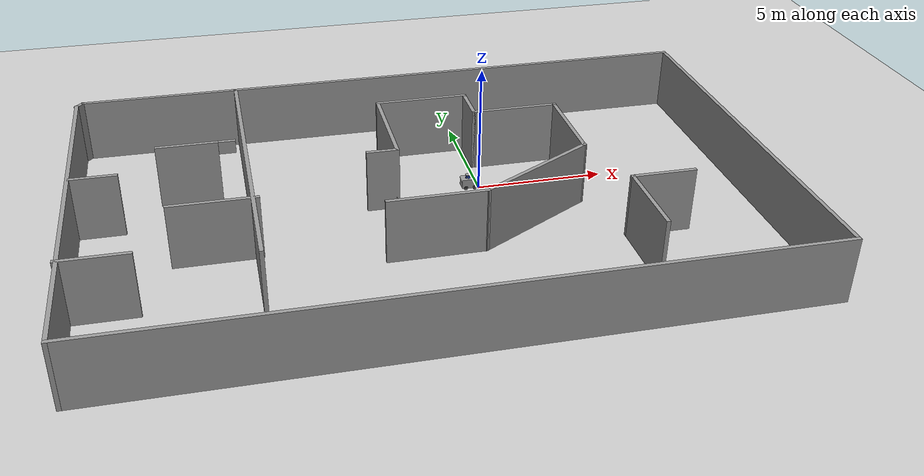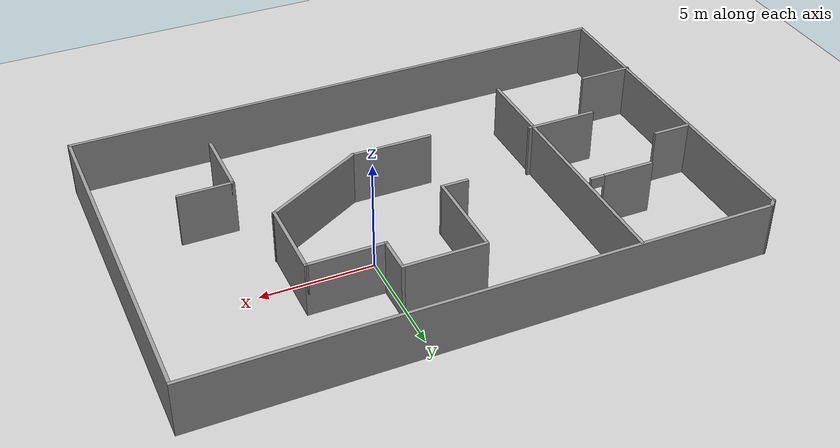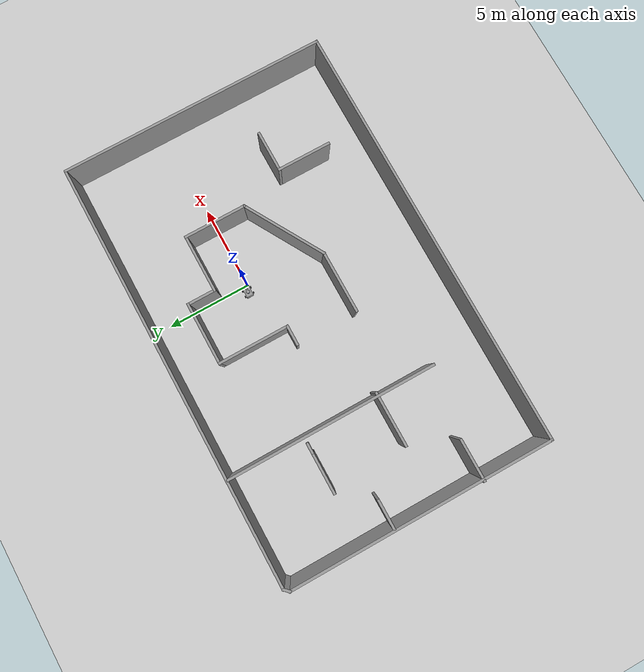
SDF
<sdf version="1.6">
 <world name="default">
  <light name="sun" type="directional">
   <pose>0 0 10 0 -0 0</pose>
   <diffuse>0.8 0.8 0.8 1</diffuse>
   <specular>0.2 0.2 0.2 1</specular>
   <attenuation>
    <range>1000</range>
    <constant>0.9</constant>
    <linear>0.01</linear>
    <quadratic>0.001</quadratic>
   </attenuation>
   <direction>-0.5 0.1 -0.9</direction>
  </light>
  <model name="ground_plane">
   <static>1</static>
   <link name="link">
    <collision name="collision">
     <geometry><plane><normal>0 0 1</normal><size>100 100</size></plane></geometry>
     <surface>
      <contact><collide_bitmask>65535</collide_bitmask></contact>
      <friction><ode><mu>100</mu><mu2>50</mu2></ode></friction>
     </surface>
    </collision>
    <visual name="visual">
     <cast_shadows>0</cast_shadows>
     <geometry><plane><normal>0 0 1</normal><size>100 100</size></plane></geometry>
     <material>
      <script><uri>file://media/materials/scripts/gazebo.material</uri><name>Gazebo/Grey</name></script>
     </material>
    </visual>
   </link>
  </model>
  <gravity>0 0 -9.8</gravity>
  <magnetic_field>6e-06 2.3e-05 -4.2e-05</magnetic_field>
  <atmosphere type="adiabatic"/>
  <physics name="default_physics" default="0" type="ode">
   <max_step_size>0.001</max_step_size>
   <real_time_factor>1</real_time_factor>
   <real_time_update_rate>1000</real_time_update_rate>
  </physics>
  <scene><ambient>0.4 0.4 0.4 1</ambient><background>0.7 0.7 0.7 1</background><shadows>1</shadows></scene>
  <audio><device>default</device></audio>
  <spherical_coordinates>
   <surface_model>EARTH_WGS84</surface_model>
   <latitude_deg>0</latitude_deg>
   <longitude_deg>0</longitude_deg>
   <elevation>0</elevation>
   <heading_deg>0</heading_deg>
  </spherical_coordinates>
  <model name="chetak_wc">
   <link name="base_link">
    <inertial>
     <pose>-0.36131 0.199977 0.277186 0 -0 0</pose>
     <mass>42.0188</mass>
     <inertia>
      <ixx>17.1146</ixx>
      <ixy>0.000253251</ixy>
      <ixz>0.679878</ixz>
      <iyy>28.5189</iyy>
      <iyz>2.14807e-05</iyz>
      <izz>29.9949</izz>
     </inertia>
    </inertial>
    <collision name="base_link_collision">
     <geometry>
      <mesh>
       <scale>0.001 0.001 0.001</scale>
       <uri>/home/sagar/catkin_ws/src/chetak_wc_description/meshes/base_link.stl</uri>
      </mesh>
     </geometry>
     <surface><friction><ode><mu>0.2</mu><mu2>0.2</mu2></ode></friction></surface>
    </collision>
    <collision name="base_link_fixed_joint_lump__uvc_rod__1_collision_1">
     <geometry>
      <mesh>
       <scale>0.001 0.001 0.001</scale>
       <uri>/home/sagar/catkin_ws/src/chetak_wc_description/meshes/uvc_rod__1.stl</uri>
      </mesh>
     </geometry>
     <surface><friction><ode><mu>0.2</mu><mu2>0.2</mu2></ode></friction></surface>
    </collision>
    <collision name="base_link_fixed_joint_lump__uvc_plate_1_collision_2">
     <geometry>
      <mesh>
       <scale>0.001 0.001 0.001</scale>
       <uri>/home/sagar/catkin_ws/src/chetak_wc_description/meshes/uvc_plate_1.stl</uri>
      </mesh>
     </geometry>
     <surface><friction><ode><mu>0.2</mu><mu2>0.2</mu2></ode></friction></surface>
    </collision>
    <collision name="base_link_fixed_joint_lump__lidar_1_collision_3">
     <geometry>
      <mesh>
       <scale>0.001 0.001 0.001</scale>
       <uri>/home/sagar/catkin_ws/src/chetak_wc_description/meshes/lidar_1.stl</uri>
      </mesh>
     </geometry>
     <surface><friction><ode><mu>0.2</mu><mu2>0.2</mu2></ode></friction></surface>
    </collision>
    <collision name="base_link_fixed_joint_lump__camera_1_collision_4">
     <geometry>
      <mesh>
       <scale>0.001 0.001 0.001</scale>
       <uri>/home/sagar/catkin_ws/src/chetak_wc_description/meshes/camera_1.stl</uri>
      </mesh>
     </geometry>
     <surface><friction><ode><mu>0.2</mu><mu2>0.2</mu2></ode></friction></surface>
    </collision>
    <collision name="base_link_fixed_joint_lump__name_1_collision_5">
     <geometry>
      <mesh>
       <scale>0.001 0.001 0.001</scale>
       <uri>/home/sagar/catkin_ws/src/chetak_wc_description/meshes/name_1.stl</uri>
      </mesh>
     </geometry>
     <surface><friction><ode><mu>0.2</mu><mu2>0.2</mu2></ode></friction></surface>
    </collision>
    <visual name="base_link_visual">
     <geometry>
      <mesh>
       <scale>0.001 0.001 0.001</scale>
       <uri>/home/sagar/catkin_ws/src/chetak_wc_description/meshes/base_link.stl</uri>
      </mesh>
     </geometry>
     <material>
      <script><name>Gazebo/Grey</name><uri>file://media/materials/scripts/gazebo.material</uri></script>
     </material>
    </visual>
    <visual name="base_link_fixed_joint_lump__uvc_rod__1_visual_1">
     <geometry>
      <mesh>
       <scale>0.001 0.001 0.001</scale>
       <uri>/home/sagar/catkin_ws/src/chetak_wc_description/meshes/uvc_rod__1.stl</uri>
      </mesh>
     </geometry>
     <material>
      <script><name>Gazebo/BlueGlow</name><uri>file://media/materials/scripts/gazebo.material</uri></script>
     </material>
    </visual>
    <visual name="base_link_fixed_joint_lump__uvc_plate_1_visual_2">
     <geometry>
      <mesh>
       <scale>0.001 0.001 0.001</scale>
       <uri>/home/sagar/catkin_ws/src/chetak_wc_description/meshes/uvc_plate_1.stl</uri>
      </mesh>
     </geometry>
     <material>
      <script><name>Gazebo/Grey</name><uri>file://media/materials/scripts/gazebo.material</uri></script>
     </material>
    </visual>
    <visual name="base_link_fixed_joint_lump__lidar_1_visual_3">
     <geometry>
      <mesh>
       <scale>0.001 0.001 0.001</scale>
       <uri>/home/sagar/catkin_ws/src/chetak_wc_description/meshes/lidar_1.stl</uri>
      </mesh>
     </geometry>
     <material>
      <script><name>Gazebo/White</name><uri>file://media/materials/scripts/gazebo.material</uri></script>
     </material>
    </visual>
    <visual name="base_link_fixed_joint_lump__camera_1_visual_4">
     <geometry>
      <mesh>
       <scale>0.001 0.001 0.001</scale>
       <uri>/home/sagar/catkin_ws/src/chetak_wc_description/meshes/camera_1.stl</uri>
      </mesh>
     </geometry>
     <material>
      <script><name>Gazebo/White</name><uri>file://media/materials/scripts/gazebo.material</uri></script>
     </material>
    </visual>
    <visual name="base_link_fixed_joint_lump__name_1_visual_5">
     <geometry>
      <mesh>
       <scale>0.001 0.001 0.001</scale>
       <uri>/home/sagar/catkin_ws/src/chetak_wc_description/meshes/name_1.stl</uri>
      </mesh>
     </geometry>
     <material>
      <script><name>Gazebo/White</name><uri>file://media/materials/scripts/gazebo.material</uri></script>
     </material>
    </visual>
    <sensor name="Lidar" type="gpu_ray">
     <visualize>1</visualize>
     <update_rate>40</update_rate>
     <ray>
      <scan>
       <horizontal>
        <samples>720</samples>
        <resolution>1</resolution>
        <min_angle>-1.5708</min_angle>
        <max_angle>1.5708</max_angle>
       </horizontal>
      </scan>
      <range><min>0.1</min><max>30</max><resolution>0.01</resolution></range>
      <noise><type>gaussian</type><mean>0</mean><stddev>0.01</stddev></noise>
     </ray>
     <plugin name="gazebo_ros_head_hokuyo_controller" filename="libgazebo_ros_gpu_laser.so">
      <topicName>/scan</topicName>
      <frameName>lidar_1</frameName>
      <robotNamespace>/</robotNamespace>
     </plugin>
     <pose>-0.015464 0.2 0.156443 0 -0 0</pose>
    </sensor>
    <self_collide>1</self_collide>
   </link>
   <link name="b_l_1">
    <pose>-0.525 0.48 0.075 0 -0 0</pose>
    <inertial>
     <pose>-0 -0.014828 0.000345 0 -0 0</pose>
     <mass>4.02291</mass>
     <inertia>
      <ixx>0.00623</ixx>
      <ixy>-0</ixy>
      <ixz>-0</ixz>
      <iyy>0.011756</iyy>
      <iyz>-3.4e-05</iyz>
      <izz>0.006161</izz>
     </inertia>
    </inertial>
    <collision name="b_l_1_collision">
     <pose>0.525 -0.48 -0.075 0 -0 0</pose>
     <geometry>
      <mesh>
       <scale>0.001 0.001 0.001</scale>
       <uri>/home/sagar/catkin_ws/src/chetak_wc_description/meshes/b_l_1.stl</uri>
      </mesh>
     </geometry>
     <surface><friction><ode><mu>0.2</mu><mu2>0.2</mu2></ode></friction></surface>
    </collision>
    <visual name="b_l_1_visual">
     <pose>0.525 -0.48 -0.075 0 -0 0</pose>
     <geometry>
      <mesh>
       <scale>0.001 0.001 0.001</scale>
       <uri>/home/sagar/catkin_ws/src/chetak_wc_description/meshes/b_l_1.stl</uri>
      </mesh>
     </geometry>
     <material>
      <script><name>Gazebo/DarkGrey</name><uri>file://media/materials/scripts/gazebo.material</uri></script>
     </material>
    </visual>
    <self_collide>1</self_collide>
   </link>
   <joint name="Rev10" type="revolute">
    <child>b_l_1</child>
    <parent>base_link</parent>
    <axis>
     <xyz>0 -1 0</xyz>
     <limit><lower>-1e+16</lower><upper>1e+16</upper></limit>
     <dynamics><spring_reference>0</spring_reference><spring_stiffness>0</spring_stiffness></dynamics>
     <use_parent_model_frame>1</use_parent_model_frame>
    </axis>
   </joint>
   <link name="b_r_1">
    <pose>-0.525 -0.08 0.075 0 -0 0</pose>
    <inertial>
     <pose>-0 0.014828 0.000345 0 -0 0</pose>
     <mass>4.02291</mass>
     <inertia>
      <ixx>0.00623</ixx>
      <ixy>0</ixy>
      <ixz>-0</ixz>
      <iyy>0.011756</iyy>
      <iyz>3.4e-05</iyz>
      <izz>0.006161</izz>
     </inertia>
    </inertial>
    <collision name="b_r_1_collision">
     <pose>0.525 0.08 -0.075 0 -0 0</pose>
     <geometry>
      <mesh>
       <scale>0.001 0.001 0.001</scale>
       <uri>/home/sagar/catkin_ws/src/chetak_wc_description/meshes/b_r_1.stl</uri>
      </mesh>
     </geometry>
     <surface><friction><ode><mu>0.2</mu><mu2>0.2</mu2></ode></friction></surface>
    </collision>
    <visual name="b_r_1_visual">
     <pose>0.525 0.08 -0.075 0 -0 0</pose>
     <geometry>
      <mesh>
       <scale>0.001 0.001 0.001</scale>
       <uri>/home/sagar/catkin_ws/src/chetak_wc_description/meshes/b_r_1.stl</uri>
      </mesh>
     </geometry>
     <material>
      <script><name>Gazebo/DarkGrey</name><uri>file://media/materials/scripts/gazebo.material</uri></script>
     </material>
    </visual>
    <self_collide>1</self_collide>
   </link>
   <joint name="Rev7" type="revolute">
    <child>b_r_1</child>
    <parent>base_link</parent>
    <axis>
     <xyz>0 -1 0</xyz>
     <limit><lower>-1e+16</lower><upper>1e+16</upper></limit>
     <dynamics><spring_reference>0</spring_reference><spring_stiffness>0</spring_stiffness></dynamics>
     <use_parent_model_frame>1</use_parent_model_frame>
    </axis>
   </joint>
   <link name="f_l_1">
    <pose>-0.175 0.48 0.075 0 -0 0</pose>
    <inertial>
     <pose>-0 -0.024855 0.000207 0 -0 0</pose>
     <mass>6.68635</mass>
     <inertia>
      <ixx>0.01123</ixx>
      <ixy>-0</ixy>
      <ixz>-0</ixz>
      <iyy>0.019546</iyy>
      <iyz>-4.8e-05</iyz>
      <izz>0.011161</izz>
     </inertia>
    </inertial>
    <collision name="f_l_1_collision">
     <pose>0.175 -0.48 -0.075 0 -0 0</pose>
     <geometry>
      <mesh>
       <scale>0.001 0.001 0.001</scale>
       <uri>/home/sagar/catkin_ws/src/chetak_wc_description/meshes/f_l_1.stl</uri>
      </mesh>
     </geometry>
     <surface><friction><ode><mu>0.2</mu><mu2>0.2</mu2></ode></friction></surface>
    </collision>
    <visual name="f_l_1_visual">
     <pose>0.175 -0.48 -0.075 0 -0 0</pose>
     <geometry>
      <mesh>
       <scale>0.001 0.001 0.001</scale>
       <uri>/home/sagar/catkin_ws/src/chetak_wc_description/meshes/f_l_1.stl</uri>
      </mesh>
     </geometry>
     <material>
      <script><name>Gazebo/DarkGrey</name><uri>file://media/materials/scripts/gazebo.material</uri></script>
     </material>
    </visual>
    <self_collide>1</self_collide>
   </link>
   <joint name="Rev8" type="revolute">
    <child>f_l_1</child>
    <parent>base_link</parent>
    <axis>
     <xyz>0 -1 0</xyz>
     <limit><lower>-1e+16</lower><upper>1e+16</upper></limit>
     <dynamics><spring_reference>0</spring_reference><spring_stiffness>0</spring_stiffness></dynamics>
     <use_parent_model_frame>1</use_parent_model_frame>
    </axis>
   </joint>
   <link name="f_r_1">
    <pose>-0.175 -0.08 0.075 0 -0 0</pose>
    <inertial>
     <pose>-0 0.024855 0.000207 0 -0 0</pose>
     <mass>6.68635</mass>
     <inertia>
      <ixx>0.01123</ixx>
      <ixy>0</ixy>
      <ixz>-0</ixz>
      <iyy>0.019546</iyy>
      <iyz>4.8e-05</iyz>
      <izz>0.011161</izz>
     </inertia>
    </inertial>
    <collision name="f_r_1_collision">
     <pose>0.175 0.08 -0.075 0 -0 0</pose>
     <geometry>
      <mesh>
       <scale>0.001 0.001 0.001</scale>
       <uri>/home/sagar/catkin_ws/src/chetak_wc_description/meshes/f_r_1.stl</uri>
      </mesh>
     </geometry>
     <surface><friction><ode><mu>0.2</mu><mu2>0.2</mu2></ode></friction></surface>
    </collision>
    <visual name="f_r_1_visual">
     <pose>0.175 0.08 -0.075 0 -0 0</pose>
     <geometry>
      <mesh>
       <scale>0.001 0.001 0.001</scale>
       <uri>/home/sagar/catkin_ws/src/chetak_wc_description/meshes/f_r_1.stl</uri>
      </mesh>
     </geometry>
     <material>
      <script><name>Gazebo/DarkGrey</name><uri>file://media/materials/scripts/gazebo.material</uri></script>
     </material>
    </visual>
    <self_collide>1</self_collide>
   </link>
   <joint name="Rev9" type="revolute">
    <child>f_r_1</child>
    <parent>base_link</parent>
    <axis>
     <xyz>0 -1 0</xyz>
     <limit><lower>-1e+16</lower><upper>1e+16</upper></limit>
     <dynamics><spring_reference>0</spring_reference><spring_stiffness>0</spring_stiffness></dynamics>
     <use_parent_model_frame>1</use_parent_model_frame>
    </axis>
   </joint>
   <static>0</static>
   <plugin name="differential_drive_controller" filename="libgazebo_ros_diff_drive.so">
    <legacyMode>0</legacyMode>
    <alwaysOn>1</alwaysOn>
    <updateRate>10</updateRate>
    <leftJoint>Rev8</leftJoint>
    <leftJoint>Rev10</leftJoint>
    <rightJoint>Rev7</rightJoint>
    <rightJoint>Rev9</rightJoint>
    <wheelSeparation>0.64</wheelSeparation>
    <wheelDiameter>0.3</wheelDiameter>
    <torque>0.9</torque>
    <commandTopic>cmd_vel</commandTopic>
    <odometryTopic>odom</odometryTopic>
    <odometryFrame>odom</odometryFrame>
    <robotBaseFrame>base_link</robotBaseFrame>
    <publishWheelTF>1</publishWheelTF>
    <publishWheelJointState>1</publishWheelJointState>
    <robotNamespace>/</robotNamespace>
   </plugin>
   <pose>-0.009822 -0.044663 -8e-05 -1.6e-05 3.7e-05 -0.017704</pose>
  </model>
  <model name="trial.world">
   <pose>-2.67761 -2.09888 0 0 -0 0</pose>
   <link name="Wall_0">
    <collision name="Wall_0_Collision">
     <geometry><box><size>25.25 0.15 2.5</size></box></geometry>
     <pose>0 0 1.25 0 -0 0</pose>
    </collision>
    <visual name="Wall_0_Visual">
     <pose>0 0 1.25 0 -0 0</pose>
     <geometry><box><size>25.25 0.15 2.5</size></box></geometry>
     <material>
      <script><uri>file://media/materials/scripts/gazebo.material</uri><name>Gazebo/Grey</name></script>
      <ambient>1 1 1 1</ambient>
     </material>
     <meta><layer>0</layer></meta>
    </visual>
    <pose>0.161822 7.90947 0 0 -0 0</pose>
   </link>
   <link name="Wall_1">
    <collision name="Wall_1_Collision">
     <geometry><box><size>16 0.15 2.5</size></box></geometry>
     <pose>0 0 1.25 0 -0 0</pose>
    </collision>
    <visual name="Wall_1_Visual">
     <pose>0 0 1.25 0 -0 0</pose>
     <geometry><box><size>16 0.15 2.5</size></box></geometry>
     <material>
      <script><uri>file://media/materials/scripts/gazebo.material</uri><name>Gazebo/Grey</name></script>
      <ambient>1 1 1 1</ambient>
     </material>
     <meta><layer>0</layer></meta>
    </visual>
    <pose>12.7118 -0.015532 0 0 -0 -1.5708</pose>
   </link>
   <link name="Wall_10">
    <collision name="Wall_10_Collision">
     <geometry><box><size>5.25 0.15 2.5</size></box></geometry>
     <pose>0 0 1.25 0 -0 0</pose>
    </collision>
    <visual name="Wall_10_Visual">
     <pose>0 0 1.25 0 -0 0</pose>
     <geometry><box><size>5.25 0.15 2.5</size></box></geometry>
     <material>
      <script><uri>file://media/materials/scripts/gazebo.material</uri><name>Gazebo/Grey</name></script>
      <ambient>1 1 1 1</ambient>
     </material>
     <meta><layer>0</layer></meta>
    </visual>
    <pose>4.01521 -1.07378 0 0 -0 -2.61799</pose>
   </link>
   <link name="Wall_11">
    <collision name="Wall_11_Collision">
     <geometry><box><size>3.75 0.15 2.5</size></box></geometry>
     <pose>0 0 1.25 0 -0 0</pose>
    </collision>
    <visual name="Wall_11_Visual">
     <pose>0 0 1.25 0 -0 0</pose>
     <geometry><box><size>3.75 0.15 2.5</size></box></geometry>
     <material>
      <script><uri>file://media/materials/scripts/gazebo.material</uri><name>Gazebo/Grey</name></script>
      <ambient>1 1 1 1</ambient>
     </material>
     <meta><layer>0</layer></meta>
    </visual>
    <pose>0.006845 -2.34878 0 0 -0 3.14159</pose>
   </link>
   <link name="Wall_13">
    <collision name="Wall_13_Collision">
     <geometry><box><size>3.75 0.15 2.5</size></box></geometry>
     <pose>0 0 1.25 0 -0 0</pose>
    </collision>
    <visual name="Wall_13_Visual">
     <pose>0 0 1.25 0 -0 0</pose>
     <geometry><box><size>3.75 0.15 2.5</size></box></geometry>
     <material>
      <script><uri>file://media/materials/scripts/gazebo.material</uri><name>Gazebo/Grey</name></script>
      <ambient>1 1 1 1</ambient>
     </material>
     <meta><layer>0</layer></meta>
    </visual>
    <pose>1.06357 5.40122 0 0 -0 3.14159</pose>
   </link>
   <link name="Wall_14">
    <collision name="Wall_14_Collision">
     <geometry><box><size>4.25 0.15 2.5</size></box></geometry>
     <pose>0 0 1.25 0 -0 0</pose>
    </collision>
    <visual name="Wall_14_Visual">
     <pose>0 0 1.25 0 -0 0</pose>
     <geometry><box><size>4.25 0.15 2.5</size></box></geometry>
     <material>
      <script><uri>file://media/materials/scripts/gazebo.material</uri><name>Gazebo/Grey</name></script>
      <ambient>1 1 1 1</ambient>
     </material>
     <meta><layer>0</layer></meta>
    </visual>
    <pose>-0.736425 3.35122 0 0 -0 -1.5708</pose>
   </link>
   <link name="Wall_15">
    <collision name="Wall_15_Collision">
     <geometry><box><size>1.25 0.15 2.5</size></box></geometry>
     <pose>0 0 1.25 0 -0 0</pose>
    </collision>
    <visual name="Wall_15_Visual">
     <pose>0 0 1.25 0 -0 0</pose>
     <geometry><box><size>1.25 0.15 2.5</size></box></geometry>
     <material>
      <script><uri>file://media/materials/scripts/gazebo.material</uri><name>Gazebo/Grey</name></script>
      <ambient>1 1 1 1</ambient>
     </material>
     <meta><layer>0</layer></meta>
    </visual>
    <pose>-1.28643 1.30122 0 0 -0 3.14159</pose>
   </link>
   <link name="Wall_17">
    <collision name="Wall_17_Collision">
     <geometry><box><size>12.5 0.15 2.5</size></box></geometry>
     <pose>0 0 1.25 0 -0 0</pose>
    </collision>
    <visual name="Wall_17_Visual">
     <pose>0 0 1.25 0 -0 0</pose>
     <geometry><box><size>12.5 0.15 2.5</size></box></geometry>
     <material>
      <script><uri>file://media/materials/scripts/gazebo.material</uri><name>Gazebo/Grey</name></script>
      <ambient>1 1 1 1</ambient>
     </material>
     <meta><layer>0</layer></meta>
    </visual>
    <pose>-6.27939 1.6646 0 0 -0 1.5708</pose>
   </link>
   <link name="Wall_19">
    <collision name="Wall_19_Collision">
     <geometry><box><size>2.5 0.15 2.5</size></box></geometry>
     <pose>0 0 1.25 0 -0 0</pose>
    </collision>
    <visual name="Wall_19_Visual">
     <pose>0 0 1.25 0 -0 0</pose>
     <geometry><box><size>2.5 0.15 2.5</size></box></geometry>
     <material>
      <script><uri>file://media/materials/scripts/gazebo.material</uri><name>Gazebo/Grey</name></script>
      <ambient>1 1 1 1</ambient>
     </material>
     <meta><layer>0</layer></meta>
    </visual>
    <pose>8.28283 -2.48762 0 0 -0 3.14159</pose>
   </link>
   <link name="Wall_2">
    <collision name="Wall_2_Collision">
     <geometry><box><size>25.5 0.15 2.5</size></box></geometry>
     <pose>0 0 1.25 0 -0 0</pose>
    </collision>
    <visual name="Wall_2_Visual">
     <pose>0 0 1.25 0 -0 0</pose>
     <geometry><box><size>25.5 0.15 2.5</size></box></geometry>
     <material>
      <script><uri>file://media/materials/scripts/gazebo.material</uri><name>Gazebo/Grey</name></script>
      <ambient>1 1 1 1</ambient>
     </material>
     <meta><layer>0</layer></meta>
    </visual>
    <pose>0.036822 -7.94053 0 0 -0 3.14159</pose>
   </link>
   <link name="Wall_20">
    <collision name="Wall_20_Collision">
     <geometry><box><size>3.25 0.15 2.5</size></box></geometry>
     <pose>0 0 1.25 0 -0 0</pose>
    </collision>
    <visual name="Wall_20_Visual">
     <pose>0 0 1.25 0 -0 0</pose>
     <geometry><box><size>3.25 0.15 2.5</size></box></geometry>
     <material>
      <script><uri>file://media/materials/scripts/gazebo.material</uri><name>Gazebo/Grey</name></script>
      <ambient>1 1 1 1</ambient>
     </material>
     <meta><layer>0</layer></meta>
    </visual>
    <pose>7.10783 -4.03762 0 0 -0 -1.5708</pose>
   </link>
   <link name="Wall_22">
    <pose>-8.09083 3.33799 0 0 -0 0</pose>
    <visual name="Wall_22_Visual_0">
     <pose>-0.325294 0 1.25 0 -0 0</pose>
     <geometry><box><size>2.34941 0.15 2.5</size></box></geometry>
     <material>
      <script><uri>file://media/materials/scripts/gazebo.material</uri><name>Gazebo/Grey</name></script>
      <ambient>1 1 1 1</ambient>
     </material>
     <meta><layer>0</layer></meta>
    </visual>
    <collision name="Wall_22_Collision_0">
     <geometry><box><size>2.34941 0.15 2.5</size></box></geometry>
     <pose>-0.325294 0 1.25 0 -0 0</pose>
    </collision>
    <visual name="Wall_22_Visual_1">
     <pose>1.17471 0 2.25 0 -0 0</pose>
     <geometry><box><size>0.650588 0.15 0.5</size></box></geometry>
     <material>
      <script><uri>file://media/materials/scripts/gazebo.material</uri><name>Gazebo/Grey</name></script>
      <ambient>1 1 1 1</ambient>
     </material>
     <meta><layer>0</layer></meta>
    </visual>
    <collision name="Wall_22_Collision_1">
     <geometry><box><size>0.650588 0.15 0.5</size></box></geometry>
     <pose>1.17471 0 2.25 0 -0 0</pose>
    </collision>
   </link>
   <link name="Wall_24">
    <collision name="Wall_24_Collision">
     <geometry><box><size>1.75 0.15 2.5</size></box></geometry>
     <pose>0 0 1.25 0 -0 0</pose>
    </collision>
    <visual name="Wall_24_Visual">
     <pose>0 0 1.25 0 -0 0</pose>
     <geometry><box><size>1.75 0.15 2.5</size></box></geometry>
     <material>
      <script><uri>file://media/materials/scripts/gazebo.material</uri><name>Gazebo/Grey</name></script>
      <ambient>1 1 1 1</ambient>
     </material>
     <meta><layer>0</layer></meta>
    </visual>
    <pose>-11.75 1.51749 0 0 -0 0</pose>
   </link>
   <link name="Wall_26">
    <collision name="Wall_26_Collision">
     <geometry><box><size>3.25 0.15 2.5</size></box></geometry>
     <pose>0 0 1.25 0 -0 0</pose>
    </collision>
    <visual name="Wall_26_Visual">
     <pose>0 0 1.25 0 -0 0</pose>
     <geometry><box><size>3.25 0.15 2.5</size></box></geometry>
     <material>
      <script><uri>file://media/materials/scripts/gazebo.material</uri><name>Gazebo/Grey</name></script>
      <ambient>1 1 1 1</ambient>
     </material>
     <meta><layer>0</layer></meta>
    </visual>
    <pose>-7.66756 -1.11213 0 0 -0 3.14159</pose>
   </link>
   <link name="Wall_28">
    <collision name="Wall_28_Collision">
     <geometry><box><size>2.5 0.15 2.5</size></box></geometry>
     <pose>0 0 1.25 0 -0 0</pose>
    </collision>
    <visual name="Wall_28_Visual">
     <pose>0 0 1.25 0 -0 0</pose>
     <geometry><box><size>2.5 0.15 2.5</size></box></geometry>
     <material>
      <script><uri>file://media/materials/scripts/gazebo.material</uri><name>Gazebo/Grey</name></script>
      <ambient>1 1 1 1</ambient>
     </material>
     <meta><layer>0</layer></meta>
    </visual>
    <pose>-11.5368 -3.78219 0 0 -0 0</pose>
   </link>
   <link name="Wall_3">
    <collision name="Wall_3_Collision">
     <geometry><box><size>15.75 0.15 2.5</size></box></geometry>
     <pose>0 0 1.25 0 -0 0</pose>
    </collision>
    <visual name="Wall_3_Visual">
     <pose>0 0 1.25 0 -0 0</pose>
     <geometry><box><size>15.75 0.15 2.5</size></box></geometry>
     <material>
      <script><uri>file://media/materials/scripts/gazebo.material</uri><name>Gazebo/Grey</name></script>
      <ambient>1 1 1 1</ambient>
     </material>
     <meta><layer>0</layer></meta>
    </visual>
    <pose>-12.6382 -0.140532 0 0 -0 1.5708</pose>
   </link>
   <link name="Wall_4">
    <collision name="Wall_4_Collision">
     <geometry><box><size>0.503553 0.15 2.5</size></box></geometry>
     <pose>0 0 1.25 0 -0 0</pose>
    </collision>
    <visual name="Wall_4_Visual">
     <pose>0 0 1.25 0 -0 0</pose>
     <geometry><box><size>0.503553 0.15 2.5</size></box></geometry>
     <material>
      <script><uri>file://media/materials/scripts/gazebo.material</uri><name>Gazebo/Grey</name></script>
      <ambient>1 1 1 1</ambient>
     </material>
     <meta><layer>0</layer></meta>
    </visual>
    <pose>-12.5132 7.78447 0 0 -0 0.785398</pose>
   </link>
   <link name="Wall_6">
    <collision name="Wall_6_Collision">
     <geometry><box><size>1.75 0.15 2.5</size></box></geometry>
     <pose>0 0 1.25 0 -0 0</pose>
    </collision>
    <visual name="Wall_6_Visual">
     <pose>0 0 1.25 0 -0 0</pose>
     <geometry><box><size>1.75 0.15 2.5</size></box></geometry>
     <material>
      <script><uri>file://media/materials/scripts/gazebo.material</uri><name>Gazebo/Grey</name></script>
      <ambient>1 1 1 1</ambient>
     </material>
     <meta><layer>0</layer></meta>
    </visual>
    <pose>2.86357 4.60122 0 0 -0 -1.5708</pose>
   </link>
   <link name="Wall_7">
    <collision name="Wall_7_Collision">
     <geometry><box><size>3.5 0.15 2.5</size></box></geometry>
     <pose>0 0 1.25 0 -0 0</pose>
    </collision>
    <visual name="Wall_7_Visual">
     <pose>0 0 1.25 0 -0 0</pose>
     <geometry><box><size>3.5 0.15 2.5</size></box></geometry>
     <material>
      <script><uri>file://media/materials/scripts/gazebo.material</uri><name>Gazebo/Grey</name></script>
      <ambient>1 1 1 1</ambient>
     </material>
     <meta><layer>0</layer></meta>
    </visual>
    <pose>4.53857 3.80122 0 0 -0 0</pose>
   </link>
   <link name="Wall_8">
    <collision name="Wall_8_Collision">
     <geometry><box><size>3.75 0.15 2.5</size></box></geometry>
     <pose>0 0 1.25 0 -0 0</pose>
    </collision>
    <visual name="Wall_8_Visual">
     <pose>0 0 1.25 0 -0 0</pose>
     <geometry><box><size>3.75 0.15 2.5</size></box></geometry>
     <material>
      <script><uri>file://media/materials/scripts/gazebo.material</uri><name>Gazebo/Grey</name></script>
      <ambient>1 1 1 1</ambient>
     </material>
     <meta><layer>0</layer></meta>
    </visual>
    <pose>6.21357 2.00122 0 0 -0 -1.5708</pose>
   </link>
   <link name="Wall_9">
    <collision name="Wall_9_Collision">
     <geometry><box><size>0.16 0.15 2.5</size></box></geometry>
     <pose>0 0 1.25 0 -0 0</pose>
    </collision>
    <visual name="Wall_9_Visual">
     <pose>0 0 1.25 0 -0 0</pose>
     <geometry><box><size>0.16 0.15 2.5</size></box></geometry>
     <material>
      <script><uri>file://media/materials/scripts/gazebo.material</uri><name>Gazebo/Grey</name></script>
      <ambient>1 1 1 1</ambient>
     </material>
     <meta><layer>0</layer></meta>
    </visual>
    <pose>6.21858 0.201222 0 0 -0 0</pose>
   </link>
   <static>1</static>
  </model>
 </world>
</sdf>
